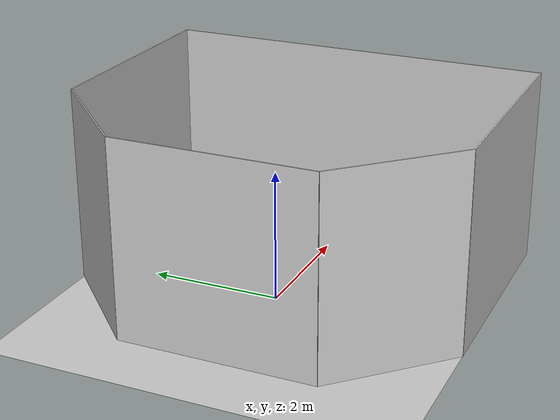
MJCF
<mujoco model="table_only">
  <visual>
    <headlight diffuse="0.3 0.3 0.3" ambient="0.2 0.2 0.2" specular="0 0 0"/>
  </visual>
  <asset>
    <texture builtin="gradient" height="256" rgb1=".9 .9 1." rgb2=".2 .3 .4" type="skybox"
      width="256" />
    <texture file="../textures/light-gray-floor-tile.png" type="2d" name="texplane" />
    <material name="floorplane" reflectance="0.01" shininess="0.0" specular="0.0" texrepeat="2 2"
      texture="texplane" texuniform="true" />
    <!-- steel legs -->
    <texture file="../textures/steel-brushed.png" type="cube" name="tex-steel-brushed" />
    <material name="table_legs_metal" reflectance="0.8" shininess="0.8" texrepeat="1 1"
      texture="tex-steel-brushed" />
    <!-- plaster walls -->
    <texture file="../textures/light-gray-plaster.png" type="2d" name="tex-light-gray-plaster" />
    <material name="walls_mat" reflectance="0.0" shininess="0.1" specular="0.1" texrepeat="3 3"
      texture="tex-light-gray-plaster" texuniform="true" />
    <!-- bins -->
    <texture file="../textures/light-wood.png" type="2d" name="tex-light-wood" />
    <texture file="../textures/dark-wood.png" type="2d" name="tex-dark-wood" />
    <material name="light-wood" reflectance="0" texrepeat="15 15" texture="tex-light-wood"
      texuniform="true" />
    <material name="dark-wood" reflectance="0" texrepeat="5 5" texture="tex-dark-wood"
      texuniform="true" />
  </asset>
  <worldbody>
    <light name="spotlight_1" mode="targetbody" pos="0 0 3" dir="0 0 -1" cutoff="50.0" exponent="20" diffuse="0.2 0.2 0.2"/>

    <geom condim="3" group="1" material="floorplane" name="floor" pos="0 0 0" size="3 3 .125"
      type="plane" />
    <!-- Walls (visual only) -->
    <geom pos="-1.25 2.25 1.5" quat="0.6532815 0.6532815 0.2705981 0.2705981" size="1.06 1.5 0.01"
      type="box" conaffinity="0" contype="0" group="1" name="wall_leftcorner_visual"
      material="walls_mat" />
    <geom pos="-1.25 -2.25 1.5" quat="0.6532815 0.6532815 -0.2705981 -0.2705981"
      size="1.06 1.5 0.01" type="box" conaffinity="0" contype="0" group="1"
      name="wall_rightcorner_visual" material="walls_mat" />
    <geom pos="1.25 3 1.5" quat="0.7071 0.7071 0 0" size="1.75 1.5 0.01" type="box" conaffinity="0"
      contype="0" group="1" name="wall_left_visual" material="walls_mat" />
    <geom pos="1.25 -3 1.5" quat="0.7071 -0.7071 0 0" size="1.75 1.5 0.01" type="box"
      conaffinity="0" contype="0" group="1" name="wall_right_visual" material="walls_mat" />
    <geom pos="-2 0 1.5" quat="0.5 0.5 0.5 0.5" size="1.5 1.5 0.01" type="box" conaffinity="0"
      contype="0" group="1" name="wall_rear_visual" material="walls_mat" />
    <geom pos="3 0 1.5" quat="0.5 0.5 -0.5 -0.5" size="3 1.5 0.01" type="box" conaffinity="0"
      contype="0" group="1" name="wall_front_visual" material="walls_mat" />
    <!-- table -->
    <body name="table" pos="0.05 -0.1 0.0">
      <!-- Make the table deep into the ground to avoid penetration -->
      <geom pos="0 0 0" size="0.6 0.6 0.22" type="box" group="0" friction="1 0.005 0.0001" />
      <geom pos="0 0 0" material="light-wood" size="0.6 0.6 0.22" type="box" conaffinity="0"
        contype="0" group="1" />

      <!-- Lines (visual only) -->
      <geom name="line" pos="-0.39 0.0 0.22" size="0.22 0.6 0.0001" type="box" group="1"
        contype="0" conaffinity="0" rgba="0 0 0 1" />
      <!-- Legs (visual only) -->
    </body>

    <!-- Uniform lighting from multiple directions -->
    <light diffuse="0.5 0.5 0.5" pos="0 0 6" castshadow="false" />
    <light diffuse="0.5 0.5 0.5" pos="6 0 6" castshadow="false" />
    <light diffuse="0.5 0.5 0.5" pos="-6 0 6" castshadow="false" />
    <light diffuse="0.5 0.5 0.5" pos="0 6 6" castshadow="false" />
    <light diffuse="0.5 0.5 0.5" pos="0 -6 6" castshadow="false" />
    <!-- front view -->
    <camera mode="fixed" name="frontview" pos="1.6 0 1.45" quat="0.56 0.43 0.43 0.56" />
    <!-- bird view -->
    <camera mode="fixed" name="birdview" pos="0.2 0 1.5" quat="0.7071 0 0 0.7071" />
    <!-- agent view -->
    <camera mode="fixed" name="agentview" pos="1.0 0 1.75" quat="0.653 0.271 0.271 0.653" />

    <!-- third person camera -->
    <camera mode="fixed" name="third_person_camera" pos="0.10 -0.1 1.0" xyaxes="0.000 -1.000 0.000 1.000 0.000 0.000"/>

    <camera mode="fixed" name="visualization_camera" pos="-0.557 0.415 1.356" xyaxes="-0.432 -0.902 0.000 0.612 -0.294 0.734"/>

  </worldbody>
</mujoco>
